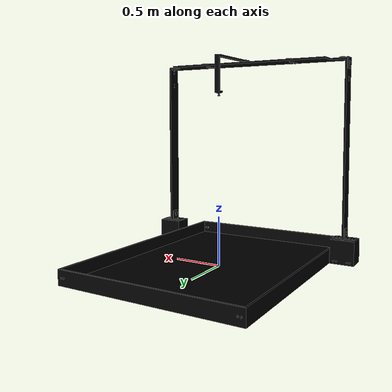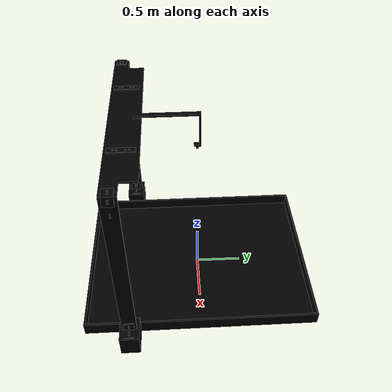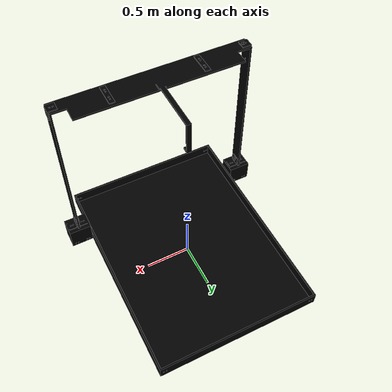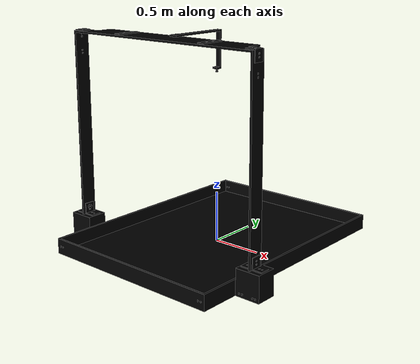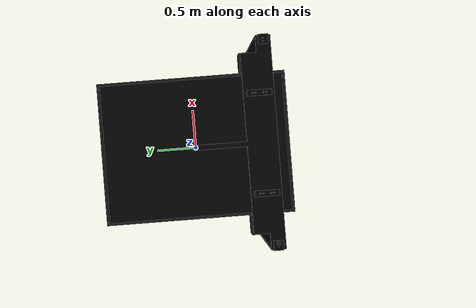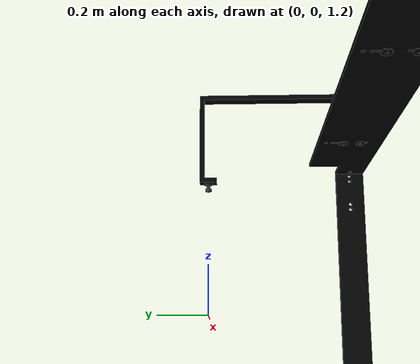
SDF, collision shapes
<?xml version="1.0" encoding="utf-8"?>
<sdf version='1.6'>
  <model name='platform'>
    <link name='base_link'>
      <pose frame=''>0 0 0 0 -0 0</pose>
      <inertial>
        <pose frame=''>6e-06 -0.221159 0.280082 0 -0 0</pose>
        <mass>151.124</mass>
        <inertia>
          <ixx>107.321</ixx>
          <ixy>0.000457316</ixy>
          <ixz>-0.00091974</ixz>
          <iyy>119.004</iyy>
          <iyz>17.8412</iyz>
          <izz>45.9816</izz>
        </inertia>
      </inertial>
      <collision name='base_link_collision'>
        <pose frame=''>0 0 0 0 -0 0</pose>
        <geometry>
          <mesh>
            <scale>1 1 1</scale>
            <uri>file://models/platform/meshes/base_link.STL</uri>
          </mesh>
        </geometry>
      </collision>
      <collision name='base_link_fixed_joint_lump__metals_collision_2'>
        <pose frame=''>-0.9234 0 0 1.5708 -0 0</pose>
        <geometry>
          <mesh>
            <scale>1 1 1</scale>
            <uri>file://models/platform/meshes/metals.STL</uri>
          </mesh>
        </geometry>
      </collision>
      <collision name='base_link_fixed_joint_lump__nuts_collision_3'>
        <pose frame=''>0 -0.74522 2.0178 1.5708 -0 1.5708</pose>
        <geometry>
          <mesh>
            <scale>1 1 1</scale>
            <uri>file://models/platform/meshes/nuts.STL</uri>
          </mesh>
        </geometry>
      </collision>
      <collision name='base_link_fixed_joint_lump__wood_collision_4'>
        <pose frame=''>-1.0574 -0.74522 1.0894 1.5708 -0 0</pose>
        <geometry>
          <mesh>
            <scale>1 1 1</scale>
            <uri>file://models/platform/meshes/wood.STL</uri>
          </mesh>
        </geometry>
      </collision>
      <visual name='base_link_visual'>
        <pose frame=''>0 0 0 0 -0 0</pose>
        <geometry>
          <mesh>
            <scale>1 1 1</scale>
            <uri>file://models/platform/meshes/base_link.STL</uri>
          </mesh>
        </geometry>
        <material>
          <ambient>0 0 0 1</ambient>
          <diffuse>0 0 0 1</diffuse>
          <specular>0.1 0.1 0.1 1</specular>
          <emissive>0 0 0 0</emissive>
        </material>
      </visual>
      <visual name="visual_track">
        <cast_shadows>false</cast_shadows>
        <pose frame=''>0 0 0.02 0 -0 1.57</pose>
        <geometry>
          <plane>
            <normal>0 0 1</normal>
            <size>2.45 1.53</size>
          </plane>
        </geometry>
        <material>
          <script>
            <uri>model://platform/materials/scripts/</uri>
            <uri>model://platform/materials/textures</uri>
            <name>platform/Image</name>
          </script>
        </material>
      </visual>
      <visual name='base_link_fixed_joint_lump__bolts_visual_1'>
        <pose frame=''>-1.1364 -0.74522 0.20829 -3.14159 -0 0</pose>
        <geometry>
          <mesh>
            <scale>1 1 1</scale>
            <uri>file://models/platform/meshes/bolts.STL</uri>
          </mesh>
        </geometry>
        <material>
          <ambient>0.97 0.65 0.008 1</ambient>
          <diffuse>0.97 0.65 0.008 1</diffuse>
          <specular>0.1 0.1 0.1 1</specular>
          <emissive>0 0 0 0</emissive>
        </material>
      </visual>
      <visual name='base_link_fixed_joint_lump__metals_visual_2'>
        <pose frame=''>-0.9234 0 0 1.5708 -0 0</pose>
        <geometry>
          <mesh>
            <scale>1 1 1</scale>
            <uri>file://models/platform/meshes/metals.STL</uri>
          </mesh>
        </geometry>
        <material>
          <ambient>0.847 0.847 0.847 1</ambient>
          <diffuse>0.847 0.847 0.847 1</diffuse>
          <specular>0.1 0.1 0.1 1</specular>
          <emissive>0 0 0 0</emissive>
        </material>
      </visual>
      <visual name='base_link_fixed_joint_lump__wood_visual_4'>
        <pose frame=''>-1.0574 -0.74522 1.0894 1.5708 -0 0</pose>
        <geometry>
          <mesh>
            <scale>1 1 1</scale>
            <uri>file://models/platform/meshes/wood.STL</uri>
          </mesh>
        </geometry>
        <material>
          <ambient>0.4 0.2 0 1</ambient>
          <diffuse>0.4 0.2 0 1</diffuse>
          <specular>0.1 0.1 0.1 1</specular>
          <emissive>0 0 0 0</emissive>
        </material>
      </visual>
    </link>
    <link name='camera'>
      <pose frame=''>0.00162 0 1.7002 0 1.57 1.57</pose>
      <inertial>
        <pose frame=''>-0 0.016534 -0 0 -0 0</pose>
        <mass>1.598e-05</mass>
        <inertia>
          <ixx>3.2592e-09</ixx>
          <ixy>3.6091e-24</ixy>
          <ixz>-3.8632e-24</ixz>
          <iyy>1.5702e-09</iyy>
          <iyz>4.5897e-24</iyz>
          <izz>3.2592e-09</izz>
        </inertia>
      </inertial>
      <collision name='camera_collision'>
        <pose frame=''>0 0 0 0 -0 1.57</pose>
        <geometry>
          <mesh>
            <scale>1 1 1</scale>
            <uri>file://models/platform/meshes/camera.STL</uri>
          </mesh>
        </geometry>
      </collision>
      <visual name='camera_visual'>
        <pose frame=''>0 0 0 0 0 1.57</pose>
        <geometry>
          <mesh>
            <scale>1 1 1</scale>
            <uri>file://models/platform/meshes/camera.STL</uri>
          </mesh>
        </geometry>
        <material>
          <ambient>0.2 0.2 0.2 1</ambient>
          <diffuse>0.2 0.2 0.2 1</diffuse>
          <specular>0.1 0.1 0.1 1</specular>
          <emissive>0 0 0 0</emissive>
        </material>
      </visual>
      <sensor name='camera' type='camera'>
        <update_rate>30</update_rate>
        <camera name='head'>
          <horizontal_fov>1.39626</horizontal_fov>
          <image>
            <width>800</width>
            <height>800</height>
            <format>R8G8B8</format>
          </image>
          <clip>
            <near>0.02</near>
            <far>300</far>
          </clip>
          <noise>
            <type>gaussian</type>
            <mean>0</mean>
            <stddev>0.007</stddev>
          </noise>
        </camera>
        <plugin name='camera_controller' filename='libgazebo_ros_camera.so'>
          <alwaysOn>true</alwaysOn>
          <updateRate>0.0</updateRate>
          <cameraName>camera</cameraName>
          <imageTopicName>image_raw</imageTopicName>
          <cameraInfoTopicName>camera_info</cameraInfoTopicName>
          <frameName>base_link</frameName>
          <hackBaseline>0.07</hackBaseline>
          <distortionK1>0.0</distortionK1>
          <distortionK2>0.0</distortionK2>
          <distortionK3>0.0</distortionK3>
          <distortionT1>0.0</distortionT1>
          <distortionT2>0.0</distortionT2>
        </plugin>
      </sensor>
    </link>
    <joint name='camera' type='revolute'>
      <child>camera</child>
      <parent>base_link</parent>
      <axis>
        <xyz>0 0 0</xyz>
        <limit>
          <lower>0</lower>
          <upper>0</upper>
          <effort>0</effort>
          <velocity>0</velocity>
        </limit>
        <dynamics>
          <spring_reference>0</spring_reference>
          <spring_stiffness>0</spring_stiffness>
        </dynamics>
        <use_parent_model_frame>1</use_parent_model_frame>
      </axis>
    </joint>
  </model>
</sdf>
